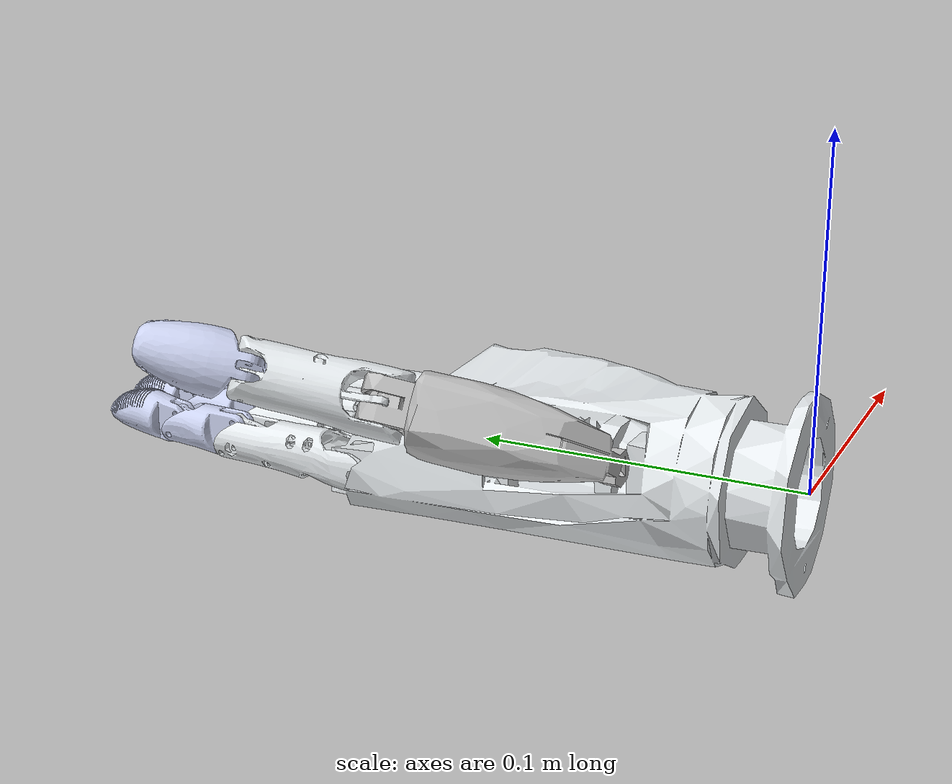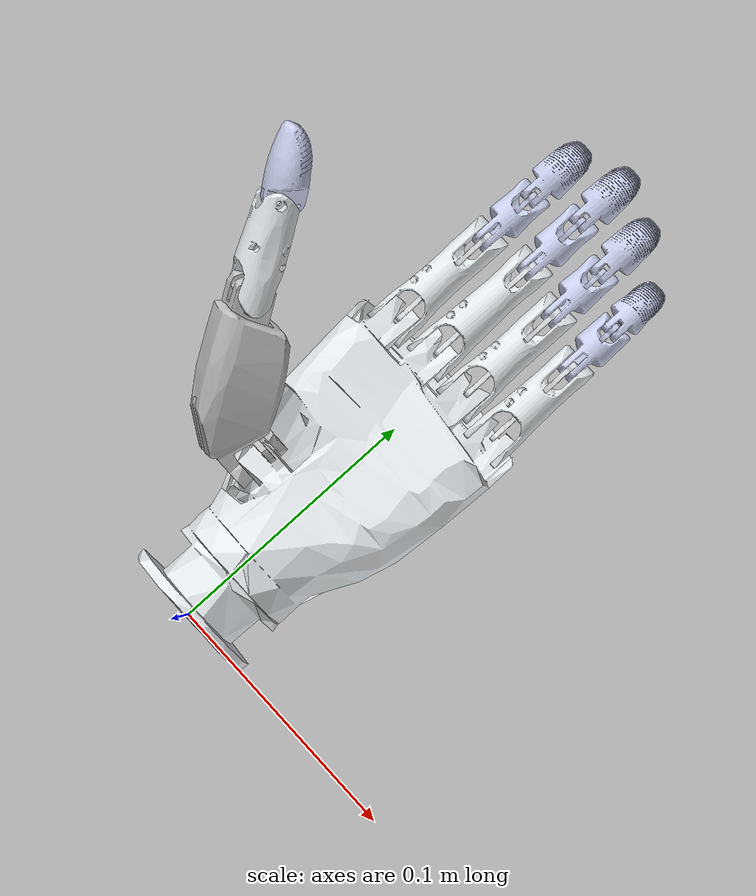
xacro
<?xml version="1.0" encoding="utf-8"?>
<robot
  name="lh_robothand_a0" xmlns:xacro="http://www.ros.org/wiki/xacro">
  <link
    name="lh_base_link">
    <inertial>
      <origin
        xyz="-0.0005326423495375 0.0772717786864033 -0.000898966132266925"
        rpy="0 0 0" />
      <mass
        value="0.262848373649471" />
      <inertia
        ixx="0.000130459702267955"
        ixy="4.38658283159813E-06"
        ixz="-6.62905537360346E-07"
        iyy="9.65532912794237E-05"
        iyz="2.75033765803907E-06"
        izz="0.000185448616754051" />
    </inertial>
    <visual>
      <origin
        xyz="0 0 0"
        rpy="0 0 0" />
      <geometry>
        <mesh
          filename="package://lh_robothand_a0_description/meshes/base_link.STL" />
      </geometry>
      <material
        name="">
        <color
          rgba="0.898039215686275 0.917647058823529 0.929411764705882 1" />
      </material>
    </visual>
    <collision>
      <origin
        xyz="0 0.11 0"
        rpy="0 0 0" />
      <geometry>
        <box size="0.08 0.22 0.05"/>
      </geometry>
    </collision>
  </link>
  <link
    name="lh_LF1_Link">
    <inertial>
      <origin
        xyz="-0.000755891931996811 0.0242568044237363 0.00149883945650025"
        rpy="0 0 0" />
      <mass
        value="0.0074874409052179" />
      <inertia
        ixx="1.35659212400427E-06"
        ixy="-4.65212839765399E-10"
        ixz="7.38171085887314E-11"
        iyy="1.60505163680432E-07"
        iyz="-1.16129213018786E-08"
        izz="1.26083289748393E-06" />
    </inertial>
    <visual>
      <origin
        xyz="0 0 0"
        rpy="0 0 0" />
      <geometry>
        <mesh
          filename="package://lh_robothand_a0_description/meshes/LF1_Link.STL" />
      </geometry>
      <material
        name="">
        <color
          rgba="0.898039215686275 0.917647058823529 0.929411764705882 1" />
      </material>
    </visual>
  </link>
  <joint
    name="lh_LF1"
    type="revolute">
    <origin
      xyz="0.02722 0.12067 -0.0012197"
      rpy="0 0 0" />
    <parent
      link="lh_base_link" />
    <child
      link="lh_LF1_Link" />
    <axis
      xyz="-1 0 0" />
    <limit
      lower="-1.57"
      upper="0"
      effort="1"
      velocity="-0.5" />
    <dynamics
      damping="0.1"
      friction="0.1" />
    <mimic
      joint="lh_LF2"
      multiplier="1.8"
      offset="0" />
  </joint>
  <link
    name="lh_LF2_Link">
    <inertial>
      <origin
        xyz="-0.000844515150359219 0.0117739441187939 0.0022679198803186"
        rpy="0 0 0" />
      <mass
        value="0.0020406717952195" />
      <inertia
        ixx="1.17780368975088E-07"
        ixy="-1.62568514619483E-10"
        ixz="-6.56414673959214E-12"
        iyy="5.24770124374262E-08"
        iyz="-1.50021567083424E-09"
        izz="1.21248902970585E-07" />
    </inertial>
    <visual>
      <origin
        xyz="0 0 0"
        rpy="0 0 0" />
      <geometry>
        <mesh
          filename="package://lh_robothand_a0_description/meshes/LF2_Link.STL" />
      </geometry>
      <material
        name="">
        <color
          rgba="0.796078431372549 0.823529411764706 0.937254901960784 1" />
      </material>
    </visual>
  </link>
  <joint
    name="lh_LF2"
    type="revolute">
    <origin
      xyz="0 0.040097 -0.00037218"
      rpy="0 0 0" />
    <parent
      link="lh_LF1_Link" />
    <child
      link="lh_LF2_Link" />
    <axis
      xyz="-1 0 0" />
    <limit
      lower="-1.57"
      upper="0"
      effort="1"
      velocity="-0.5" />
    <dynamics
      damping="0.1"
      friction="0.1" />
    <mimic
      joint="lh_LF3"
      multiplier="1.8"
      offset="0" />
  </joint>
  <link
    name="lh_LF3_Link">
    <inertial>
      <origin
        xyz="-0.000895410151615577 0.0102874431755886 0.00155427545488495"
        rpy="0 0 0" />
      <mass
        value="0.0024374814930342" />
      <inertia
        ixx="7.38921004801917E-08"
        ixy="1.49725783063222E-10"
        ixz="-4.15130471258454E-11"
        iyy="4.10621116300406E-08"
        iyz="1.55102171166972E-08"
        izz="7.50783856519446E-08" />
    </inertial>
    <visual>
      <origin
        xyz="0 0 0"
        rpy="0 0 0" />
      <geometry>
        <mesh
          filename="package://lh_robothand_a0_description/meshes/LF3_Link.STL" />
      </geometry>
      <material
        name="">
        <color
          rgba="0.796078431372549 0.823529411764706 0.937254901960784 1" />
      </material>
    </visual>
  </link>
  <joint
    name="lh_LF3"
    type="revolute">
    <origin
      xyz="0 0.02198 0.00094344"
      rpy="0 0 0" />
    <parent
      link="lh_LF2_Link" />
    <child
      link="lh_LF3_Link" />
    <axis
      xyz="-1 0 0" />
    <limit
      lower="-1"
      upper="0"
      effort="1"
      velocity="-0.5" />
    <dynamics
      damping="0.1"
      friction="0.1" />
  </joint>
  <link
    name="lh_RF1_Link">
    <inertial>
      <origin
        xyz="-0.00104069618489598 0.0261110997390666 0.00194999113122413"
        rpy="0 0 0" />
      <mass
        value="0.0083300368382922" />
      <inertia
        ixx="1.86735417982367E-06"
        ixy="-8.99284385104697E-10"
        ixz="8.91971575249666E-11"
        iyy="1.62745378640412E-07"
        iyz="-1.94691117945355E-08"
        izz="1.77324944931858E-06" />
    </inertial>
    <visual>
      <origin
        xyz="0 0 0"
        rpy="0 0 0" />
      <geometry>
        <mesh
          filename="package://lh_robothand_a0_description/meshes/RF1_Link.STL" />
      </geometry>
      <material
        name="">
        <color
          rgba="0.898039215686275 0.917647058823529 0.929411764705882 1" />
      </material>
    </visual>
  </link>
  <joint
    name="lh_RF1"
    type="revolute">
    <origin
      xyz="0.0090199 0.12467 -0.0032197"
      rpy="0 0 0" />
    <parent
      link="lh_base_link" />
    <child
      link="lh_RF1_Link" />
    <axis
      xyz="-1 0 0" />
    <limit
      lower="-1.57"
      upper="0"
      effort="1"
      velocity="-0.5" />
    <dynamics
      damping="0.1"
      friction="0.1" />
    <mimic
      joint="lh_RF2"
      multiplier="1.8"
      offset="0" />
  </joint>
  <link
    name="lh_RF2_Link">
    <inertial>
      <origin
        xyz="-0.00119704829718612 0.0126321497239338 0.00261158687244465"
        rpy="0 0 0" />
      <mass
        value="0.00216268864685091" />
      <inertia
        ixx="1.41711926150424E-07"
        ixy="-1.51182028249349E-10"
        ixz="1.16937908138144E-11"
        iyy="5.52598873102467E-08"
        iyz="-1.51138258504334E-09"
        izz="1.46910093656898E-07" />
    </inertial>
    <visual>
      <origin
        xyz="0 0 0"
        rpy="0 0 0" />
      <geometry>
        <mesh
          filename="package://lh_robothand_a0_description/meshes/RF2_Link.STL" />
      </geometry>
      <material
        name="">
        <color
          rgba="0.796078431372549 0.823529411764706 0.937254901960784 1" />
      </material>
    </visual>
  </link>
  <joint
    name="lh_RF2"
    type="revolute">
    <origin
      xyz="0.0002 0.0445 0.00020578"
      rpy="0 0 0" />
    <parent
      link="lh_RF1_Link" />
    <child
      link="lh_RF2_Link" />
    <axis
      xyz="-1 0 0" />
    <limit
      lower="-1.57"
      upper="0"
      effort="1"
      velocity="-0.5" />
    <dynamics
      damping="0.1"
      friction="0.1" />
    <mimic
      joint="lh_RF3"
      multiplier="1.8"
      offset="0" />
  </joint>
  <link
    name="lh_RF3_Link">
    <inertial>
      <origin
        xyz="-0.00119370596150321 0.0122054724231012 0.00355817968514922"
        rpy="0 0 0" />
      <mass
        value="0.00336561552955153" />
      <inertia
        ixx="1.25559248030388E-07"
        ixy="5.22357622270556E-11"
        ixz="-2.92570308975789E-11"
        iyy="6.16777154701083E-08"
        iyz="1.74296137561546E-08"
        izz="1.34405881345937E-07" />
    </inertial>
    <visual>
      <origin
        xyz="0 0 0"
        rpy="0 0 0" />
      <geometry>
        <mesh
          filename="package://lh_robothand_a0_description/meshes/RF3_Link.STL" />
      </geometry>
      <material
        name="">
        <color
          rgba="0.796078431372549 0.823529411764706 0.937254901960784 1" />
      </material>
    </visual>
  </link>
  <joint
    name="lh_RF3"
    type="revolute">
    <origin
      xyz="0 0.024497 0.00039909"
      rpy="0 0 0" />
    <parent
      link="lh_RF2_Link" />
    <child
      link="lh_RF3_Link" />
    <axis
      xyz="-1 0 0" />
    <limit
      lower="-1"
      upper="0"
      effort="1"
      velocity="-0.5" />
    <dynamics
      damping="0.1"
      friction="0.1" />
  </joint>
  <link
    name="lh_MF1_Link">
    <inertial>
      <origin
        xyz="-0.00103409605479259 0.0276393847117343 0.00252652933854141"
        rpy="0 0 0" />
      <mass
        value="0.0097069421206806" />
      <inertia
        ixx="2.35328907941077E-06"
        ixy="-1.1153108835082E-09"
        ixz="-5.24844132673409E-11"
        iyy="2.03043476464388E-07"
        iyz="-6.87987313977919E-08"
        izz="2.23086466393879E-06" />
    </inertial>
    <visual>
      <origin
        xyz="0 0 0"
        rpy="0 0 0" />
      <geometry>
        <mesh
          filename="package://lh_robothand_a0_description/meshes/MF1_Link.STL" />
      </geometry>
      <material
        name="">
        <color
          rgba="0.898039215686275 0.917647058823529 0.929411764705882 1" />
      </material>
    </visual>
  </link>
  <joint
    name="lh_MF1"
    type="revolute">
    <origin
      xyz="-0.0094801 0.12667 -0.0047197"
      rpy="0 0 0" />
    <parent
      link="lh_base_link" />
    <child
      link="lh_MF1_Link" />
    <axis
      xyz="-1 0 0" />
    <limit
      lower="-1.57"
      upper="0"
      effort="1"
      velocity="-0.5" />
    <dynamics
      damping="0.1"
      friction="0.1" />
    <mimic
      joint="lh_MF2"
      multiplier="1.8"
      offset="0" />
  </joint>
  <link
    name="lh_MF2_Link">
    <inertial>
      <origin
        xyz="-0.00103269636547934 0.013490144319442 0.0028976553081372"
        rpy="0 0 0" />
      <mass
        value="0.00228824509732534" />
      <inertia
        ixx="1.7050913980067E-07"
        ixy="-1.56264344067894E-10"
        ixz="-2.22921136326968E-11"
        iyy="5.95577145416408E-08"
        iyz="-4.42554833000743E-09"
        izz="1.78155599264701E-07" />
    </inertial>
    <visual>
      <origin
        xyz="0 0 0"
        rpy="0 0 0" />
      <geometry>
        <mesh
          filename="package://lh_robothand_a0_description/meshes/MF2_Link.STL" />
      </geometry>
      <material
        name="">
        <color
          rgba="0.796078431372549 0.823529411764706 0.937254901960784 1" />
      </material>
    </visual>
  </link>
  <joint
    name="lh_MF2"
    type="revolute">
    <origin
      xyz="0 0.047487 0.0011335"
      rpy="0 0 0" />
    <parent
      link="lh_MF1_Link" />
    <child
      link="lh_MF2_Link" />
    <axis
      xyz="-1 0 0" />
    <limit
      lower="-1.57"
      upper="0"
      effort="1"
      velocity="-0.5" />
    <dynamics
      damping="0.1"
      friction="0.1" />
    <mimic
      joint="lh_MF3"
      multiplier="1.8"
      offset="0" />
  </joint>
  <link
    name="lh_MF3_Link">
    <inertial>
      <origin
        xyz="-0.00109373548759277 0.0122123250633884 0.0035339262295747"
        rpy="0 0 0" />
      <mass
        value="0.00336556031844797" />
      <inertia
        ixx="1.25555487633584E-07"
        ixy="5.24058611297316E-11"
        ixz="-2.89495483920673E-11"
        iyy="6.17473787558547E-08"
        iyz="1.7573287946942E-08"
        izz="1.34335338467939E-07" />
    </inertial>
    <visual>
      <origin
        xyz="0 0 0"
        rpy="0 0 0" />
      <geometry>
        <mesh
          filename="package://lh_robothand_a0_description/meshes/MF3_Link.STL" />
      </geometry>
      <material
        name="">
        <color
          rgba="0.796078431372549 0.823529411764706 0.937254901960784 1" />
      </material>
    </visual>
  </link>
  <joint
    name="lh_MF3"
    type="revolute">
    <origin
      xyz="0 0.026482 0.00098138"
      rpy="0 0 0" />
    <parent
      link="lh_MF2_Link" />
    <child
      link="lh_MF3_Link" />
    <axis
      xyz="-1 0 0" />
    <limit
      lower="-1"
      upper="0"
      effort="1"
      velocity="-0.5" />
    <dynamics
      damping="0.1"
      friction="0.1" />
  </joint>
  <link
    name="lh_FF1_Link">
    <inertial>
      <origin
        xyz="-0.00104070068063387 0.0260984041341586 0.00208802564535935"
        rpy="0 0 0" />
      <mass
        value="0.00833003074086424" />
      <inertia
        ixx="1.86735423879991E-06"
        ixy="-8.99750519087512E-10"
        ixz="8.43248988996383E-11"
        iyy="1.63055145455469E-07"
        iyz="-2.8096330181437E-08"
        izz="1.77293980832037E-06" />
    </inertial>
    <visual>
      <origin
        xyz="0 0 0"
        rpy="0 0 0" />
      <geometry>
        <mesh
          filename="package://lh_robothand_a0_description/meshes/FF1_Link.STL" />
      </geometry>
      <material
        name="">
        <color
          rgba="0.898039215686275 0.917647058823529 0.929411764705882 1" />
      </material>
    </visual>
  </link>
  <joint
    name="lh_FF1"
    type="revolute">
    <origin
      xyz="-0.02808 0.12467 -0.0032197"
      rpy="0 0 0" />
    <parent
      link="lh_base_link" />
    <child
      link="lh_FF1_Link" />
    <axis
      xyz="-1 0 0" />
    <limit
      lower="-1.57"
      upper="0"
      effort="1"
      velocity="-0.5" />
    <dynamics
      damping="0.1"
      friction="0.1" />
    <mimic
      joint="lh_FF2"
      multiplier="1.8"
      offset="0" />
  </joint>
  <link
    name="lh_FF2_Link">
    <inertial>
      <origin
        xyz="-0.00119704889849115 0.0126024560602183 0.0027410938324317"
        rpy="0 0 0" />
      <mass
        value="0.00216268861976196" />
      <inertia
        ixx="1.41711912861347E-07"
        ixy="-1.51284528273074E-10"
        ixz="1.01075984664546E-11"
        iyy="5.53138478506454E-08"
        iyz="-2.47277102938112E-09"
        izz="1.46856120478191E-07" />
    </inertial>
    <visual>
      <origin
        xyz="0 0 0"
        rpy="0 0 0" />
      <geometry>
        <mesh
          filename="package://lh_robothand_a0_description/meshes/FF2_Link.STL" />
      </geometry>
      <material
        name="">
        <color
          rgba="0.796078431372549 0.823529411764706 0.937254901960784 1" />
      </material>
    </visual>
  </link>
  <joint
    name="lh_FF2"
    type="revolute">
    <origin
      xyz="0.0002 0.044498 0.00044206"
      rpy="0 0 0" />
    <parent
      link="lh_FF1_Link" />
    <child
      link="lh_FF2_Link" />
    <axis
      xyz="-1 0 0" />
    <limit
      lower="-1.57"
      upper="0"
      effort="1"
      velocity="-0.5" />
    <dynamics
      damping="0.1"
      friction="0.1" />
    <mimic
      joint="lh_FF3"
      multiplier="1.8"
      offset="0" />
  </joint>
  <link
    name="lh_FF3_Link">
    <inertial>
      <origin
        xyz="-0.00119677791994263 0.0121617673254443 0.00370928642272381"
        rpy="0 0 0" />
      <mass
        value="0.00337032712997865" />
      <inertia
        ixx="1.25145238174883E-07"
        ixy="4.33600409634468E-11"
        ixz="-5.31106934522797E-11"
        iyy="6.15688525220647E-08"
        iyz="1.6346381812885E-08"
        izz="1.35642578425083E-07" />
    </inertial>
    <visual>
      <origin
        xyz="0 0 0"
        rpy="0 0 0" />
      <geometry>
        <mesh
          filename="package://lh_robothand_a0_description/meshes/FF3_Link.STL" />
      </geometry>
      <material
        name="">
        <color
          rgba="0.796078431372549 0.823529411764706 0.937254901960784 1" />
      </material>
    </visual>
  </link>
  <joint
    name="lh_FF3"
    type="revolute">
    <origin
      xyz="0 0.024491 0.00065357"
      rpy="0 0 0" />
    <parent
      link="lh_FF2_Link" />
    <child
      link="lh_FF3_Link" />
    <axis
      xyz="-1 0 0" />
    <limit
      lower="-1"
      upper="0"
      effort="1"
      velocity="-0.5" />
    <dynamics
      damping="0.1"
      friction="0.1" />
  </joint>
  <link
    name="lh_TH1_Link">
    <inertial>
      <origin
        xyz="0.0126010834927772 0.0270415002472552 0.0157351570711252"
        rpy="0 0 0" />
      <mass
        value="0.0376965566076027" />
      <inertia
        ixx="2.99126716126074E-06"
        ixy="-6.52954680161949E-07"
        ixz="-4.43418989487351E-07"
        iyy="3.70766297941824E-06"
        iyz="-1.05012625203573E-06"
        izz="4.80087959123137E-06" />
    </inertial>
    <visual>
      <origin
        xyz="0 0 0"
        rpy="0 0 0" />
      <geometry>
        <mesh
          filename="package://lh_robothand_a0_description/meshes/TH1_Link.STL" />
      </geometry>
      <material
        name="">
        <color
          rgba="0.752941176470588 0.752941176470588 0.752941176470588 1" />
      </material>
    </visual>
  </link>
  <joint
    name="lh_TH1"
    type="revolute">
    <origin
      xyz="-0.024843 0.061673 0.0085578"
      rpy="0 0 1.5708" />
    <parent
      link="lh_base_link" />
    <child
      link="lh_TH1_Link" />
    <axis
      xyz="-1 0 0" />
    <limit
      lower="0"
      upper="1"
      effort="1"
      velocity="0.5" />
    <dynamics
      damping="0.1"
      friction="0.1" />
    <mimic
      joint="lh_TH2"
      multiplier="-1.8"
      offset="0" />
  </joint>
  <link
    name="lh_TH2_Link">
    <inertial>
      <origin
        xyz="-0.000751465383598712 0.0187130036119364 0.0118895562526252"
        rpy="0 0 0" />
      <mass
        value="0.00973663443524222" />
      <inertia
        ixx="1.44806919545669E-06"
        ixy="1.00623347985229E-09"
        ixz="1.07227762503879E-09"
        iyy="5.8335186003981E-07"
        iyz="-4.98758878518182E-07"
        izz="9.58749675239436E-07" />
    </inertial>
    <visual>
      <origin
        xyz="0 0 0"
        rpy="0 0 0" />
      <geometry>
        <mesh
          filename="package://lh_robothand_a0_description/meshes/TH2_Link.STL" />
      </geometry>
      <material
        name="">
        <color
          rgba="0.898039215686275 0.917647058823529 0.929411764705882 1" />
      </material>
    </visual>
  </link>
  <joint
    name="lh_TH2"
    type="revolute">
    <origin
      xyz="0.029023 0.041949 0.02497"
      rpy="0 -1.0472 -1.5708" />
    <parent
      link="lh_TH1_Link" />
    <child
      link="lh_TH2_Link" />
    <axis
      xyz="1 0 0" />
    <limit
      lower="-0.65"
      upper="0"
      effort="1"
      velocity="-0.5" />
    <dynamics
      damping="0.1"
      friction="0.1" />
    <mimic
      joint="lh_TH3"
      multiplier="1.8"
      offset="0" />
  </joint>
  <link
    name="lh_TH3_Link">
    <inertial>
      <origin
        xyz="-0.00084857 0.011553 0.005952"
        rpy="0 0 0" />
      <mass
        value="0.0049133" />
      <inertia
        ixx="2.112E-07"
        ixy="1.7884E-10"
        ixz="1.4276E-10"
        iyy="1.9961E-07"
        iyz="-4.4924E-08"
        izz="1.6068E-07" />
    </inertial>
    <visual>
      <origin
        xyz="0 0 0"
        rpy="0 0 0" />
      <geometry>
        <mesh
          filename="package://lh_robothand_a0_description/meshes/TH3_Link.STL" />
      </geometry>
      <material
        name="">
        <color
          rgba="0.79608 0.82353 0.93725 1" />
      </material>
    </visual>
  </link>
  <joint
    name="lh_TH3"
    type="revolute">
    <origin
      xyz="0 0.030805 0.02225"
      rpy="0 0 0" />
    <parent
      link="lh_TH2_Link" />
    <child
      link="lh_TH3_Link" />
    <axis
      xyz="1 0 0" />
    <limit
      lower="-0.79"
      upper="0"
      effort="1"
      velocity="0.5" />
    <dynamics
      damping="0.1"
      friction="0.1" />
  </joint>
</robot>
